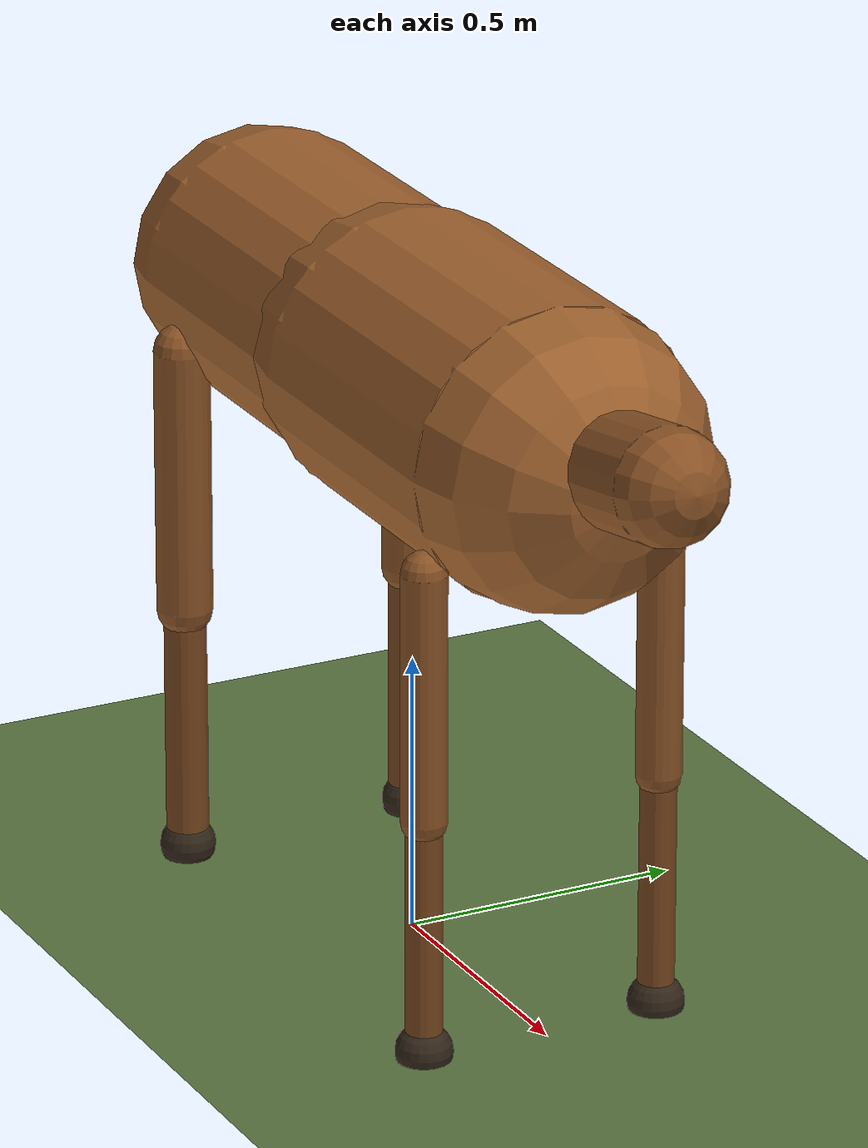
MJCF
<mujoco model="highland_cow_v5">
  <compiler angle="radian" eulerseq="XYZ" autolimits="true"
            inertiafromgeom="auto"/>

  <option timestep="0.002" iterations="50" solver="Newton"
          gravity="0 0 -9.81" impratio="10">
    <flag warmstart="enable"/>
  </option>

  <default>
    <joint armature="0.08" damping="2.0" limited="true"
           solimplimit="0.9 0.95 0.001" solreflimit="0.02 1"
           frictionloss="0.15"/>

    <geom contype="0" conaffinity="0" condim="3"
          friction="1.0 0.5 0.01" margin="0.001"/>

    <general gaintype="fixed" biastype="affine" ctrllimited="true"
             forcelimited="true"/>

    <default class="body_geom">
      <geom rgba="0.62 0.38 0.18 1"/>
    </default>
    <default class="upper_leg">
      <geom rgba="0.55 0.33 0.15 1" type="capsule"/>
    </default>
    <default class="lower_leg">
      <geom rgba="0.48 0.28 0.12 1" type="capsule"/>
    </default>
    <default class="foot">
      <geom rgba="0.20 0.15 0.10 1" type="sphere"
            contype="1" conaffinity="1" condim="4"
            friction="1.5 0.8 0.02"
            solimp="0.9 0.95 0.001" solref="0.01 1"/>
    </default>
  </default>

  <asset>
    <texture type="skybox" builtin="gradient" rgb1="0.6 0.7 0.9" rgb2="0.2 0.3 0.5"
             width="512" height="512"/>
    <texture name="grid" type="2d" builtin="checker" rgb1="0.4 0.5 0.3"
             rgb2="0.3 0.4 0.2" width="512" height="512"/>
    <material name="grid" texture="grid" texrepeat="8 8" reflectance="0.1"/>
  </asset>

  <contact>
    <exclude body1="torso" body2="front_body"/>
    <exclude body1="torso" body2="rl_hip"/>
    <exclude body1="torso" body2="rr_hip"/>
    <exclude body1="front_body" body2="fl_hip"/>
    <exclude body1="front_body" body2="fr_hip"/>
  </contact>

  <worldbody>
    <geom name="floor" type="plane" size="50 50 0.1" material="grid"
          contype="1" conaffinity="1" condim="4"
          friction="1.0 0.5 0.01"/>

    <!-- ═══ REAR TORSO (root) ═══ -->
    <body name="torso" pos="0 0 1.05">
      <freejoint name="root"/>
      <site name="imu_site" pos="0 0 0" size="0.01"/>

      <inertial pos="-0.15 0 0" mass="42.0"
                diaginertia="1.8 3.0 3.2"/>

      <!-- Simple rear barrel -->
      <geom class="body_geom" name="rear_barrel" type="capsule"
            fromto="-0.55 0 0  0.12 0 0" size="0.24"/>

      <!-- ═══ FRONT BODY (spine yaw) ═══ -->
      <body name="front_body" pos="0.10 0 0">
        <joint name="spine_yaw" type="hinge" axis="0 0 1"
               range="-0.35 0.35" damping="4.0" armature="0.10"/>

        <inertial pos="0.30 0 0.05" mass="48.0"
                  diaginertia="2.5 5.0 5.5"/>

        <!-- Simple front barrel -->
        <geom class="body_geom" name="front_barrel" type="capsule"
              fromto="-0.12 0 0  0.42 0 0" size="0.26"/>
        <!-- Simple head -->
        <geom name="head" type="capsule"
              fromto="0.46 0 0.02  0.80 0 0.08" size="0.10"
              rgba="0.55 0.33 0.15 1"/>

        <!-- ═══ FRONT-LEFT LEG ═══ -->
        <body name="fl_hip" pos="0.38 0.22 -0.18">
          <joint name="fl_hip_roll" type="hinge" axis="1 0 0"
                 range="-0.4 0.4" damping="2.0" armature="0.05"/>
          <joint name="fl_hip_pitch" type="hinge" axis="0 1 0"
                 range="-0.5 0.8" damping="3.0" armature="0.08"/>
          <inertial pos="0 0 -0.22" mass="3.0"
                    diaginertia="0.048 0.048 0.002"/>
          <geom class="upper_leg" fromto="0 0 0  0 0 -0.44"
                size="0.040" name="fl_upper_geom"/>

          <body name="fl_lower" pos="0 0 -0.44">
            <joint name="fl_knee" type="hinge" axis="0 1 0"
                   range="-0.8 0.5" damping="2.5" armature="0.06"/>
            <inertial pos="0 0 -0.21" mass="2.0"
                      diaginertia="0.029 0.029 0.001"/>
            <geom class="lower_leg" fromto="0 0 0  0 0 -0.42"
                  size="0.032" name="fl_lower_geom"/>

            <body name="fl_foot" pos="0 0 -0.42">
              <geom class="foot" name="fl_foot_geom" size="0.05" mass="0.5"/>
              <site name="fl_foot_site" pos="0 0 -0.05" size="0.01"/>
            </body>
          </body>
        </body>

        <!-- ═══ FRONT-RIGHT LEG ═══ -->
        <body name="fr_hip" pos="0.38 -0.22 -0.18">
          <joint name="fr_hip_roll" type="hinge" axis="1 0 0"
                 range="-0.4 0.4" damping="2.0" armature="0.05"/>
          <joint name="fr_hip_pitch" type="hinge" axis="0 1 0"
                 range="-0.5 0.8" damping="3.0" armature="0.08"/>
          <inertial pos="0 0 -0.22" mass="3.0"
                    diaginertia="0.048 0.048 0.002"/>
          <geom class="upper_leg" fromto="0 0 0  0 0 -0.44"
                size="0.040" name="fr_upper_geom"/>

          <body name="fr_lower" pos="0 0 -0.44">
            <joint name="fr_knee" type="hinge" axis="0 1 0"
                   range="-0.8 0.5" damping="2.5" armature="0.06"/>
            <inertial pos="0 0 -0.21" mass="2.0"
                      diaginertia="0.029 0.029 0.001"/>
            <geom class="lower_leg" fromto="0 0 0  0 0 -0.42"
                  size="0.032" name="fr_lower_geom"/>

            <body name="fr_foot" pos="0 0 -0.42">
              <geom class="foot" name="fr_foot_geom" size="0.05" mass="0.5"/>
              <site name="fr_foot_site" pos="0 0 -0.05" size="0.01"/>
            </body>
          </body>
        </body>

      </body> <!-- /front_body -->

      <!-- ═══ REAR-LEFT LEG ═══ -->
      <body name="rl_hip" pos="-0.45 0.22 -0.10">
        <joint name="rl_hip_roll" type="hinge" axis="1 0 0"
               range="-0.4 0.4" damping="2.0" armature="0.05"/>
        <joint name="rl_hip_pitch" type="hinge" axis="0 1 0"
               range="-0.8 0.4" damping="3.5" armature="0.10"/>
        <inertial pos="0 0 -0.24" mass="3.5"
                  diaginertia="0.067 0.067 0.003"/>
        <geom class="upper_leg" fromto="0 0 0  0 0 -0.48"
              size="0.050" name="rl_upper_geom"/>

        <body name="rl_lower" pos="0 0 -0.48">
          <joint name="rl_knee" type="hinge" axis="0 1 0"
                 range="-0.3 1.5" damping="3.0" armature="0.08"/>
          <inertial pos="0 0 -0.225" mass="2.5"
                    diaginertia="0.042 0.042 0.002"/>
          <geom class="lower_leg" fromto="0 0 0  0 0 -0.45"
                size="0.038" name="rl_lower_geom"/>

          <body name="rl_foot" pos="0 0 -0.45">
            <geom class="foot" name="rl_foot_geom" size="0.05" mass="0.5"/>
            <site name="rl_foot_site" pos="0 0 -0.05" size="0.01"/>
          </body>
        </body>
      </body>

      <!-- ═══ REAR-RIGHT LEG ═══ -->
      <body name="rr_hip" pos="-0.45 -0.22 -0.10">
        <joint name="rr_hip_roll" type="hinge" axis="1 0 0"
               range="-0.4 0.4" damping="2.0" armature="0.05"/>
        <joint name="rr_hip_pitch" type="hinge" axis="0 1 0"
               range="-0.8 0.4" damping="3.5" armature="0.10"/>
        <inertial pos="0 0 -0.24" mass="3.5"
                  diaginertia="0.067 0.067 0.003"/>
        <geom class="upper_leg" fromto="0 0 0  0 0 -0.48"
              size="0.050" name="rr_upper_geom"/>

        <body name="rr_lower" pos="0 0 -0.48">
          <joint name="rr_knee" type="hinge" axis="0 1 0"
                 range="-0.3 1.5" damping="3.0" armature="0.08"/>
          <inertial pos="0 0 -0.225" mass="2.5"
                    diaginertia="0.042 0.042 0.002"/>
          <geom class="lower_leg" fromto="0 0 0  0 0 -0.45"
                size="0.038" name="rr_lower_geom"/>

          <body name="rr_foot" pos="0 0 -0.45">
            <geom class="foot" name="rr_foot_geom" size="0.05" mass="0.5"/>
            <site name="rr_foot_site" pos="0 0 -0.05" size="0.01"/>
          </body>
        </body>
      </body>

    </body> <!-- /torso -->
  </worldbody>

  <!-- ═══ ACTUATORS — 13 DOF ═══ -->
  <actuator>
    <general name="spine_yaw_act" joint="spine_yaw"
             gainprm="150 0 0" biasprm="0 -150 -8" biastype="affine"
             ctrlrange="-0.35 0.35" forcerange="-200 200"/>

    <general name="fl_hip_roll_act"  joint="fl_hip_roll"
             gainprm="100 0 0" biasprm="0 -100 -5"  biastype="affine"
             ctrlrange="-0.4 0.4"   forcerange="-150 150"/>
    <general name="fl_hip_pitch_act" joint="fl_hip_pitch"
             gainprm="200 0 0" biasprm="0 -200 -8"  biastype="affine"
             ctrlrange="-0.5 0.8"   forcerange="-350 350"/>
    <general name="fl_knee_act"      joint="fl_knee"
             gainprm="150 0 0" biasprm="0 -150 -6"  biastype="affine"
             ctrlrange="-0.8 0.5"   forcerange="-300 300"/>

    <general name="fr_hip_roll_act"  joint="fr_hip_roll"
             gainprm="100 0 0" biasprm="0 -100 -5"  biastype="affine"
             ctrlrange="-0.4 0.4"   forcerange="-150 150"/>
    <general name="fr_hip_pitch_act" joint="fr_hip_pitch"
             gainprm="200 0 0" biasprm="0 -200 -8"  biastype="affine"
             ctrlrange="-0.5 0.8"   forcerange="-350 350"/>
    <general name="fr_knee_act"      joint="fr_knee"
             gainprm="150 0 0" biasprm="0 -150 -6"  biastype="affine"
             ctrlrange="-0.8 0.5"   forcerange="-300 300"/>

    <general name="rl_hip_roll_act"  joint="rl_hip_roll"
             gainprm="100 0 0" biasprm="0 -100 -5"  biastype="affine"
             ctrlrange="-0.4 0.4"   forcerange="-150 150"/>
    <general name="rl_hip_pitch_act" joint="rl_hip_pitch"
             gainprm="250 0 0" biasprm="0 -250 -10" biastype="affine"
             ctrlrange="-0.8 0.4"   forcerange="-400 400"/>
    <general name="rl_knee_act"      joint="rl_knee"
             gainprm="250 0 0" biasprm="0 -250 -10" biastype="affine"
             ctrlrange="-0.3 1.5"   forcerange="-400 400"/>

    <general name="rr_hip_roll_act"  joint="rr_hip_roll"
             gainprm="100 0 0" biasprm="0 -100 -5"  biastype="affine"
             ctrlrange="-0.4 0.4"   forcerange="-150 150"/>
    <general name="rr_hip_pitch_act" joint="rr_hip_pitch"
             gainprm="250 0 0" biasprm="0 -250 -10" biastype="affine"
             ctrlrange="-0.8 0.4"   forcerange="-400 400"/>
    <general name="rr_knee_act"      joint="rr_knee"
             gainprm="250 0 0" biasprm="0 -250 -10" biastype="affine"
             ctrlrange="-0.3 1.5"   forcerange="-400 400"/>
  </actuator>

  <sensor>
    <accelerometer name="imu_acc" site="imu_site"/>
    <gyro name="imu_gyro" site="imu_site"/>
    <framequat name="body_quat" objtype="site" objname="imu_site"/>
    <framelinvel name="body_linvel" objtype="site" objname="imu_site"/>
    <frameangvel name="body_angvel" objtype="site" objname="imu_site"/>
    <touch name="fl_foot_touch" site="fl_foot_site"/>
    <touch name="fr_foot_touch" site="fr_foot_site"/>
    <touch name="rl_foot_touch" site="rl_foot_site"/>
    <touch name="rr_foot_touch" site="rr_foot_site"/>
  </sensor>

  <keyframe>
    <key name="standing" qpos="
      0 0 1.05  1 0 0 0
      0.0
      0.0  0.15  -0.18
      0.0  0.15  -0.18
      0.0 -0.25   0.50
      0.0 -0.25   0.50
    " ctrl="
      0.0
      0.0  0.15  -0.18
      0.0  0.15  -0.18
      0.0 -0.25   0.50
      0.0 -0.25   0.50
    "/>
  </keyframe>
</mujoco>
